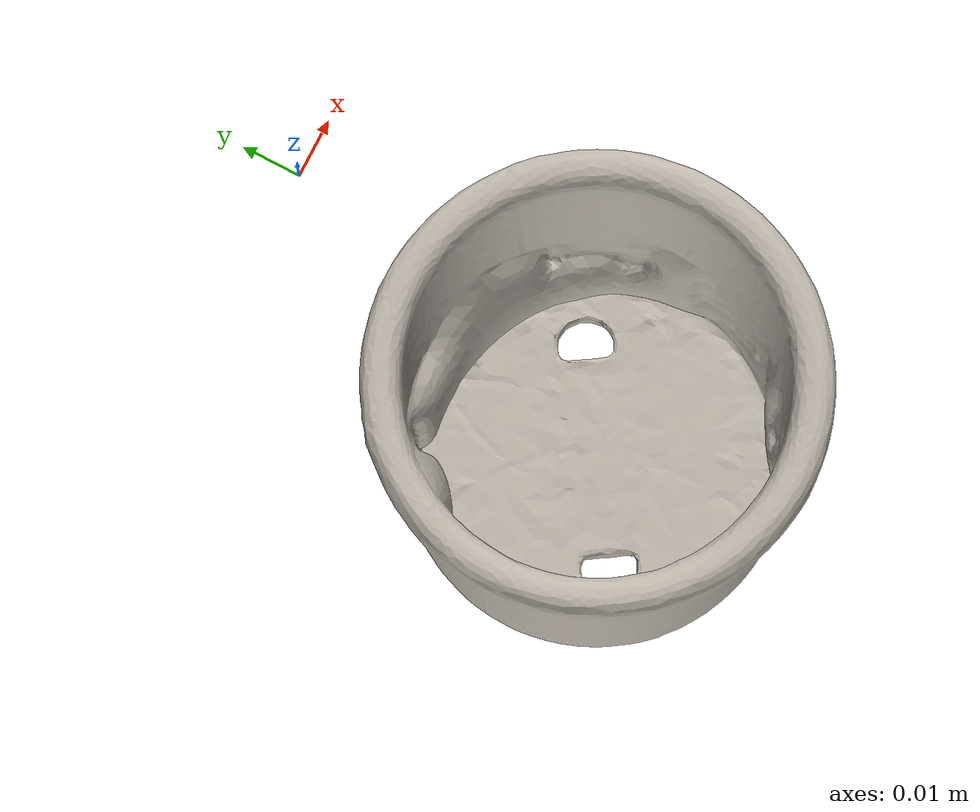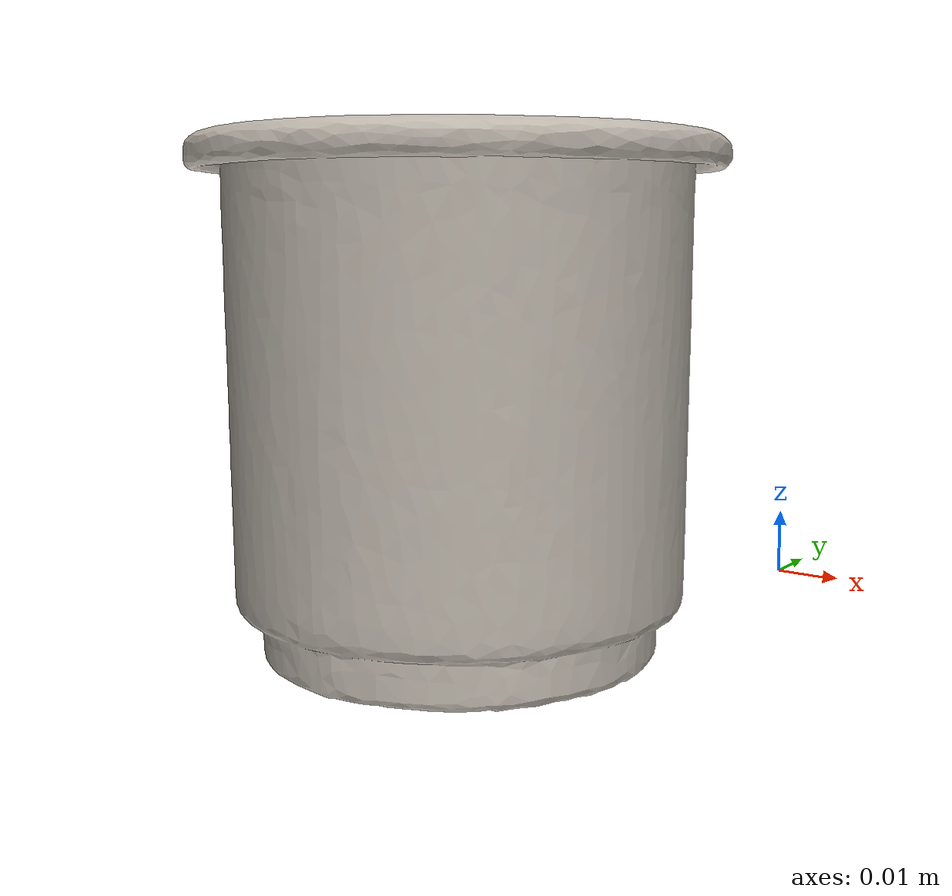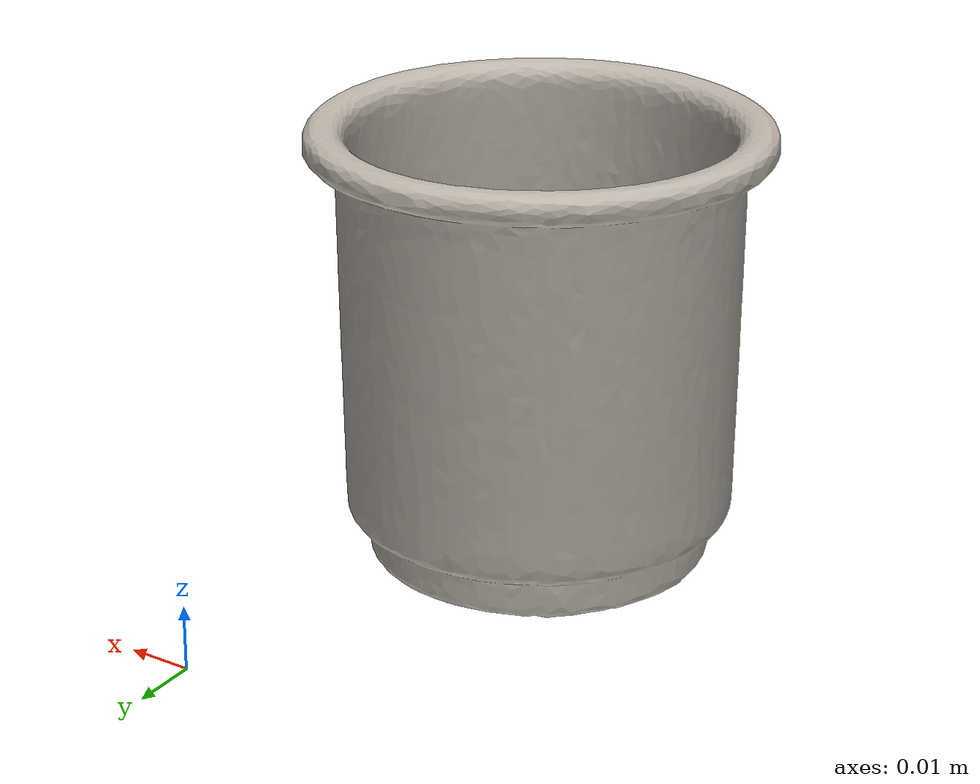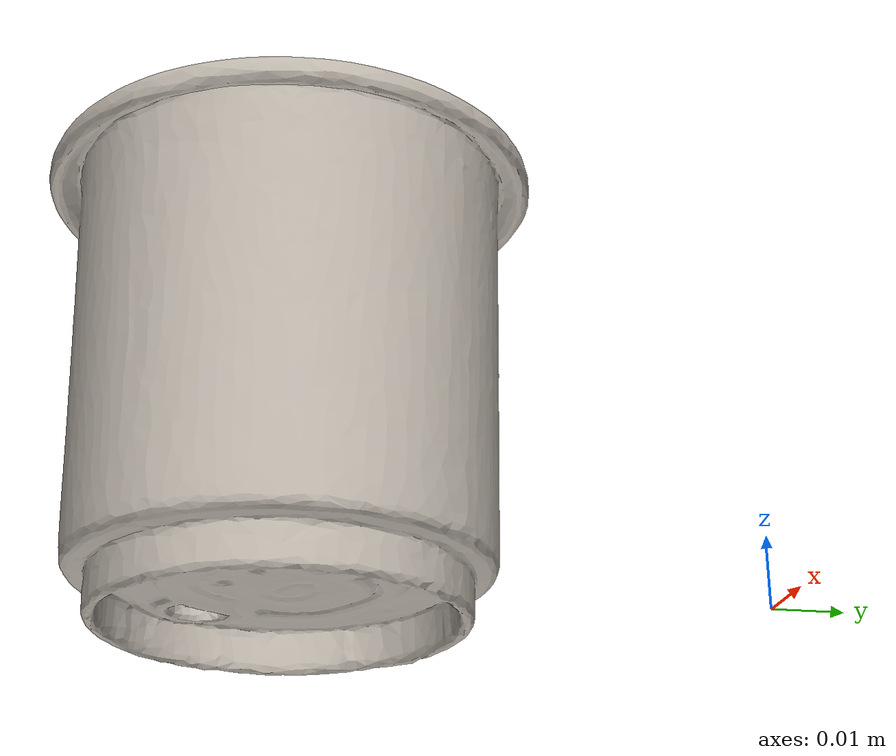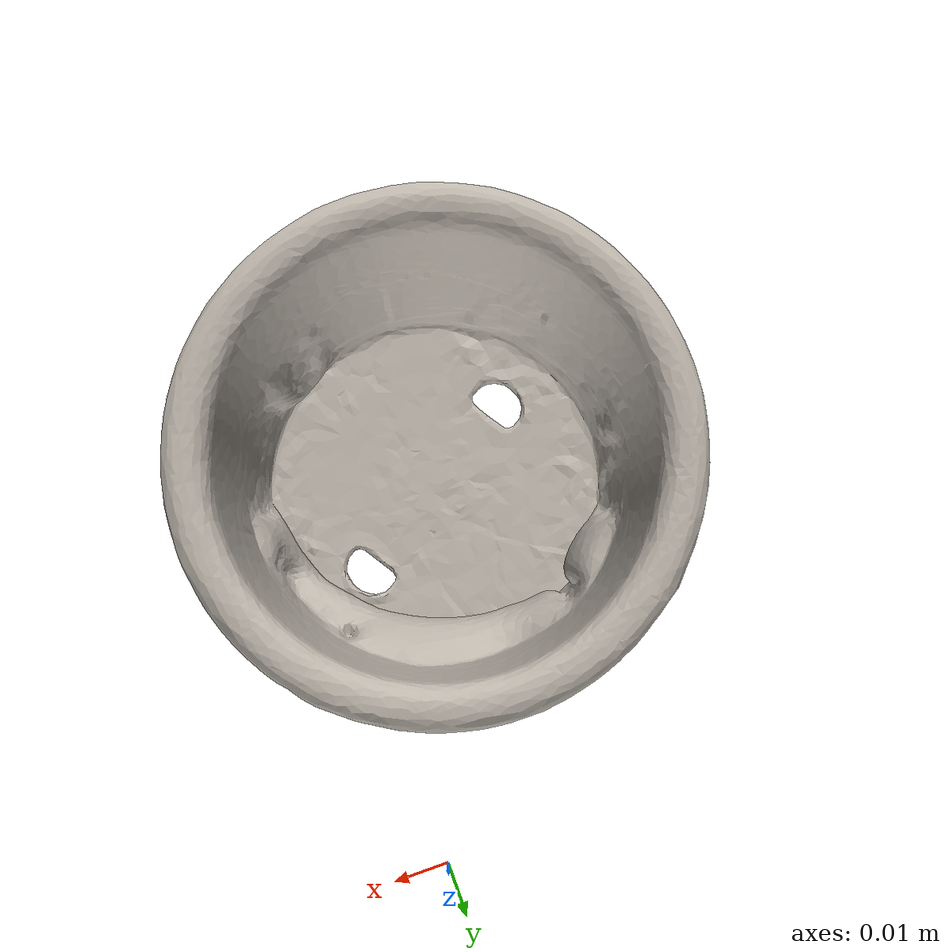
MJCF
<mujoco model="cups_d">
  <compiler angle="radian" meshdir="assets" texturedir="assets"/>
    <default>
        <default class="ycb_col">
            <geom contype="1" conaffinity="1" group="3" rgba=".4 .5 .6 1"/>
        </default>
        <default class="ycb_viz">
            <geom contype="0" conaffinity="0" type="mesh" mass="0"/>
        </default>
    </default>
  <asset>
    <texture type="2d" name="d_cups_tex" file="texture_map.png"/>
    <material name="d_cups_mat" texture="d_cups_tex" specular="0.5" shininess="0.5"/>
    <mesh file="textured.obj" name="d_cups"/>
    <mesh file="textured_collision_0.obj" name="d_cups_collision_0"/>
    <mesh file="textured_collision_1.obj" name="d_cups_collision_1"/>
    <mesh file="textured_collision_2.obj" name="d_cups_collision_2"/>
    <mesh file="textured_collision_3.obj" name="d_cups_collision_3"/>
    <mesh file="textured_collision_4.obj" name="d_cups_collision_4"/>
    <mesh file="textured_collision_5.obj" name="d_cups_collision_5"/>
    <mesh file="textured_collision_6.obj" name="d_cups_collision_6"/>
    <mesh file="textured_collision_7.obj" name="d_cups_collision_7"/>
    <mesh file="textured_collision_8.obj" name="d_cups_collision_8"/>
    <mesh file="textured_collision_9.obj" name="d_cups_collision_9"/>
    <mesh file="textured_collision_10.obj" name="d_cups_collision_10"/>
    <mesh file="textured_collision_11.obj" name="d_cups_collision_11"/>
    <mesh file="textured_collision_12.obj" name="d_cups_collision_12"/>
    <mesh file="textured_collision_13.obj" name="d_cups_collision_13"/>
    <mesh file="textured_collision_14.obj" name="d_cups_collision_14"/>
    <mesh file="textured_collision_15.obj" name="d_cups_collision_15"/>
    <mesh file="textured_collision_16.obj" name="d_cups_collision_16"/>
    <mesh file="textured_collision_17.obj" name="d_cups_collision_17"/>
    <mesh file="textured_collision_18.obj" name="d_cups_collision_18"/>
    <mesh file="textured_collision_19.obj" name="d_cups_collision_19"/>
    <mesh file="textured_collision_20.obj" name="d_cups_collision_20"/>
    <mesh file="textured_collision_21.obj" name="d_cups_collision_21"/>
    <mesh file="textured_collision_22.obj" name="d_cups_collision_22"/>
    <mesh file="textured_collision_23.obj" name="d_cups_collision_23"/>
    <mesh file="textured_collision_24.obj" name="d_cups_collision_24"/>
    <mesh file="textured_collision_25.obj" name="d_cups_collision_25"/>
    <mesh file="textured_collision_26.obj" name="d_cups_collision_26"/>
    <mesh file="textured_collision_27.obj" name="d_cups_collision_27"/>
    <mesh file="textured_collision_28.obj" name="d_cups_collision_28"/>
    <mesh file="textured_collision_29.obj" name="d_cups_collision_29"/>
    <mesh file="textured_collision_30.obj" name="d_cups_collision_30"/>
    <mesh file="textured_collision_31.obj" name="d_cups_collision_31"/>
    <mesh file="textured_collision_32.obj" name="d_cups_collision_32"/>
    <mesh file="textured_collision_33.obj" name="d_cups_collision_33"/>
    <mesh file="textured_collision_34.obj" name="d_cups_collision_34"/>
    <mesh file="textured_collision_35.obj" name="d_cups_collision_35"/>
    <mesh file="textured_collision_36.obj" name="d_cups_collision_36"/>
    <mesh file="textured_collision_37.obj" name="d_cups_collision_37"/>
    <mesh file="textured_collision_38.obj" name="d_cups_collision_38"/>
    <mesh file="textured_collision_39.obj" name="d_cups_collision_39"/>
    <mesh file="textured_collision_40.obj" name="d_cups_collision_40"/>
    <mesh file="textured_collision_41.obj" name="d_cups_collision_41"/>
    <mesh file="textured_collision_42.obj" name="d_cups_collision_42"/>
    <mesh file="textured_collision_43.obj" name="d_cups_collision_43"/>
    <mesh file="textured_collision_44.obj" name="d_cups_collision_44"/>
    <mesh file="textured_collision_45.obj" name="d_cups_collision_45"/>
    <mesh file="textured_collision_46.obj" name="d_cups_collision_46"/>
    <mesh file="textured_collision_47.obj" name="d_cups_collision_47"/>
    <mesh file="textured_collision_48.obj" name="d_cups_collision_48"/>
    <mesh file="textured_collision_49.obj" name="d_cups_collision_49"/>
  </asset>
  <worldbody>
      <geom material="d_cups_mat" mesh="d_cups" class="ycb_viz"/>
      <geom mesh="d_cups_collision_0" class="ycb_col" conaffinity="1" condim="4" friction="0.1 0.1 0.1" mass="0.00031830678748732673" rgba="1 1 1 1" solimp="0.99 0.99 0.01" solref=".001 0.1" type="mesh" group="3"/>
      <geom mesh="d_cups_collision_1" class="ycb_col" conaffinity="1" condim="4" friction="0.1 0.1 0.1" mass="0.00026672591283422535" rgba="1 1 1 1" solimp="0.99 0.99 0.01" solref=".001 0.1" type="mesh" group="3"/>
      <geom mesh="d_cups_collision_2" class="ycb_col" conaffinity="1" condim="4" friction="0.1 0.1 0.1" mass="0.0003665005218733435" rgba="1 1 1 1" solimp="0.99 0.99 0.01" solref=".001 0.1" type="mesh" group="3"/>
      <geom mesh="d_cups_collision_3" class="ycb_col" conaffinity="1" condim="4" friction="0.1 0.1 0.1" mass="0.00023205158303981184" rgba="1 1 1 1" solimp="0.99 0.99 0.01" solref=".001 0.1" type="mesh" group="3"/>
      <geom mesh="d_cups_collision_4" class="ycb_col" conaffinity="1" condim="4" friction="0.1 0.1 0.1" mass="0.0003065902723178764" rgba="1 1 1 1" solimp="0.99 0.99 0.01" solref=".001 0.1" type="mesh" group="3"/>
      <geom mesh="d_cups_collision_5" class="ycb_col" conaffinity="1" condim="4" friction="0.1 0.1 0.1" mass="0.0007450112802066795" rgba="1 1 1 1" solimp="0.99 0.99 0.01" solref=".001 0.1" type="mesh" group="3"/>
      <geom mesh="d_cups_collision_6" class="ycb_col" conaffinity="1" condim="4" friction="0.1 0.1 0.1" mass="0.0006206506531035224" rgba="1 1 1 1" solimp="0.99 0.99 0.01" solref=".001 0.1" type="mesh" group="3"/>
      <geom mesh="d_cups_collision_7" class="ycb_col" conaffinity="1" condim="4" friction="0.1 0.1 0.1" mass="0.0002058184350445779" rgba="1 1 1 1" solimp="0.99 0.99 0.01" solref=".001 0.1" type="mesh" group="3"/>
      <geom mesh="d_cups_collision_8" class="ycb_col" conaffinity="1" condim="4" friction="0.1 0.1 0.1" mass="0.00010468761317020666" rgba="1 1 1 1" solimp="0.99 0.99 0.01" solref=".001 0.1" type="mesh" group="3"/>
      <geom mesh="d_cups_collision_9" class="ycb_col" conaffinity="1" condim="4" friction="0.1 0.1 0.1" mass="0.00021628292112768177" rgba="1 1 1 1" solimp="0.99 0.99 0.01" solref=".001 0.1" type="mesh" group="3"/>
      <geom mesh="d_cups_collision_10" class="ycb_col" conaffinity="1" condim="4" friction="0.1 0.1 0.1" mass="5.98226558562608e-05" rgba="1 1 1 1" solimp="0.99 0.99 0.01" solref=".001 0.1" type="mesh" group="3"/>
      <geom mesh="d_cups_collision_11" class="ycb_col" conaffinity="1" condim="4" friction="0.1 0.1 0.1" mass="0.00018138056066273027" rgba="1 1 1 1" solimp="0.99 0.99 0.01" solref=".001 0.1" type="mesh" group="3"/>
      <geom mesh="d_cups_collision_12" class="ycb_col" conaffinity="1" condim="4" friction="0.1 0.1 0.1" mass="5.963594954919178e-05" rgba="1 1 1 1" solimp="0.99 0.99 0.01" solref=".001 0.1" type="mesh" group="3"/>
      <geom mesh="d_cups_collision_13" class="ycb_col" conaffinity="1" condim="4" friction="0.1 0.1 0.1" mass="0.00013272766210836566" rgba="1 1 1 1" solimp="0.99 0.99 0.01" solref=".001 0.1" type="mesh" group="3"/>
      <geom mesh="d_cups_collision_14" class="ycb_col" conaffinity="1" condim="4" friction="0.1 0.1 0.1" mass="0.00013179174306046534" rgba="1 1 1 1" solimp="0.99 0.99 0.01" solref=".001 0.1" type="mesh" group="3"/>
      <geom mesh="d_cups_collision_15" class="ycb_col" conaffinity="1" condim="4" friction="0.1 0.1 0.1" mass="0.0008779079661201296" rgba="1 1 1 1" solimp="0.99 0.99 0.01" solref=".001 0.1" type="mesh" group="3"/>
      <geom mesh="d_cups_collision_16" class="ycb_col" conaffinity="1" condim="4" friction="0.1 0.1 0.1" mass="0.0005869787033058485" rgba="1 1 1 1" solimp="0.99 0.99 0.01" solref=".001 0.1" type="mesh" group="3"/>
      <geom mesh="d_cups_collision_17" class="ycb_col" conaffinity="1" condim="4" friction="0.1 0.1 0.1" mass="0.0007415388097975012" rgba="1 1 1 1" solimp="0.99 0.99 0.01" solref=".001 0.1" type="mesh" group="3"/>
      <geom mesh="d_cups_collision_18" class="ycb_col" conaffinity="1" condim="4" friction="0.1 0.1 0.1" mass="0.0006739934297861619" rgba="1 1 1 1" solimp="0.99 0.99 0.01" solref=".001 0.1" type="mesh" group="3"/>
      <geom mesh="d_cups_collision_19" class="ycb_col" conaffinity="1" condim="4" friction="0.1 0.1 0.1" mass="0.00010921998601902424" rgba="1 1 1 1" solimp="0.99 0.99 0.01" solref=".001 0.1" type="mesh" group="3"/>
      <geom mesh="d_cups_collision_20" class="ycb_col" conaffinity="1" condim="4" friction="0.1 0.1 0.1" mass="0.00015239358944442157" rgba="1 1 1 1" solimp="0.99 0.99 0.01" solref=".001 0.1" type="mesh" group="3"/>
      <geom mesh="d_cups_collision_21" class="ycb_col" conaffinity="1" condim="4" friction="0.1 0.1 0.1" mass="0.0009708379802209072" rgba="1 1 1 1" solimp="0.99 0.99 0.01" solref=".001 0.1" type="mesh" group="3"/>
      <geom mesh="d_cups_collision_22" class="ycb_col" conaffinity="1" condim="4" friction="0.1 0.1 0.1" mass="0.0009426157033720977" rgba="1 1 1 1" solimp="0.99 0.99 0.01" solref=".001 0.1" type="mesh" group="3"/>
      <geom mesh="d_cups_collision_23" class="ycb_col" conaffinity="1" condim="4" friction="0.1 0.1 0.1" mass="7.786183161228573e-05" rgba="1 1 1 1" solimp="0.99 0.99 0.01" solref=".001 0.1" type="mesh" group="3"/>
      <geom mesh="d_cups_collision_24" class="ycb_col" conaffinity="1" condim="4" friction="0.1 0.1 0.1" mass="0.00011921459315544352" rgba="1 1 1 1" solimp="0.99 0.99 0.01" solref=".001 0.1" type="mesh" group="3"/>
      <geom mesh="d_cups_collision_25" class="ycb_col" conaffinity="1" condim="4" friction="0.1 0.1 0.1" mass="0.0005706925051359062" rgba="1 1 1 1" solimp="0.99 0.99 0.01" solref=".001 0.1" type="mesh" group="3"/>
      <geom mesh="d_cups_collision_26" class="ycb_col" conaffinity="1" condim="4" friction="0.1 0.1 0.1" mass="0.001006779516775264" rgba="1 1 1 1" solimp="0.99 0.99 0.01" solref=".001 0.1" type="mesh" group="3"/>
      <geom mesh="d_cups_collision_27" class="ycb_col" conaffinity="1" condim="4" friction="0.1 0.1 0.1" mass="0.0006131134524825888" rgba="1 1 1 1" solimp="0.99 0.99 0.01" solref=".001 0.1" type="mesh" group="3"/>
      <geom mesh="d_cups_collision_28" class="ycb_col" conaffinity="1" condim="4" friction="0.1 0.1 0.1" mass="9.555804155739055e-05" rgba="1 1 1 1" solimp="0.99 0.99 0.01" solref=".001 0.1" type="mesh" group="3"/>
      <geom mesh="d_cups_collision_29" class="ycb_col" conaffinity="1" condim="4" friction="0.1 0.1 0.1" mass="0.0001276101386023565" rgba="1 1 1 1" solimp="0.99 0.99 0.01" solref=".001 0.1" type="mesh" group="3"/>
      <geom mesh="d_cups_collision_30" class="ycb_col" conaffinity="1" condim="4" friction="0.1 0.1 0.1" mass="0.0001869147494079329" rgba="1 1 1 1" solimp="0.99 0.99 0.01" solref=".001 0.1" type="mesh" group="3"/>
      <geom mesh="d_cups_collision_31" class="ycb_col" conaffinity="1" condim="4" friction="0.1 0.1 0.1" mass="0.0016142283157540656" rgba="1 1 1 1" solimp="0.99 0.99 0.01" solref=".001 0.1" type="mesh" group="3"/>
      <geom mesh="d_cups_collision_32" class="ycb_col" conaffinity="1" condim="4" friction="0.1 0.1 0.1" mass="0.00024078749832801604" rgba="1 1 1 1" solimp="0.99 0.99 0.01" solref=".001 0.1" type="mesh" group="3"/>
      <geom mesh="d_cups_collision_33" class="ycb_col" conaffinity="1" condim="4" friction="0.1 0.1 0.1" mass="0.00012187120937111086" rgba="1 1 1 1" solimp="0.99 0.99 0.01" solref=".001 0.1" type="mesh" group="3"/>
      <geom mesh="d_cups_collision_34" class="ycb_col" conaffinity="1" condim="4" friction="0.1 0.1 0.1" mass="0.0004117931794231115" rgba="1 1 1 1" solimp="0.99 0.99 0.01" solref=".001 0.1" type="mesh" group="3"/>
      <geom mesh="d_cups_collision_35" class="ycb_col" conaffinity="1" condim="4" friction="0.1 0.1 0.1" mass="0.0001971306140863668" rgba="1 1 1 1" solimp="0.99 0.99 0.01" solref=".001 0.1" type="mesh" group="3"/>
      <geom mesh="d_cups_collision_36" class="ycb_col" conaffinity="1" condim="4" friction="0.1 0.1 0.1" mass="0.0007356473092394504" rgba="1 1 1 1" solimp="0.99 0.99 0.01" solref=".001 0.1" type="mesh" group="3"/>
      <geom mesh="d_cups_collision_37" class="ycb_col" conaffinity="1" condim="4" friction="0.1 0.1 0.1" mass="0.000437419572841975" rgba="1 1 1 1" solimp="0.99 0.99 0.01" solref=".001 0.1" type="mesh" group="3"/>
      <geom mesh="d_cups_collision_38" class="ycb_col" conaffinity="1" condim="4" friction="0.1 0.1 0.1" mass="0.00014208730524783262" rgba="1 1 1 1" solimp="0.99 0.99 0.01" solref=".001 0.1" type="mesh" group="3"/>
      <geom mesh="d_cups_collision_39" class="ycb_col" conaffinity="1" condim="4" friction="0.1 0.1 0.1" mass="0.00031180691986224614" rgba="1 1 1 1" solimp="0.99 0.99 0.01" solref=".001 0.1" type="mesh" group="3"/>
      <geom mesh="d_cups_collision_40" class="ycb_col" conaffinity="1" condim="4" friction="0.1 0.1 0.1" mass="0.0007896386253240772" rgba="1 1 1 1" solimp="0.99 0.99 0.01" solref=".001 0.1" type="mesh" group="3"/>
      <geom mesh="d_cups_collision_41" class="ycb_col" conaffinity="1" condim="4" friction="0.1 0.1 0.1" mass="0.00017677833285330502" rgba="1 1 1 1" solimp="0.99 0.99 0.01" solref=".001 0.1" type="mesh" group="3"/>
      <geom mesh="d_cups_collision_42" class="ycb_col" conaffinity="1" condim="4" friction="0.1 0.1 0.1" mass="0.00028396473657546717" rgba="1 1 1 1" solimp="0.99 0.99 0.01" solref=".001 0.1" type="mesh" group="3"/>
      <geom mesh="d_cups_collision_43" class="ycb_col" conaffinity="1" condim="4" friction="0.1 0.1 0.1" mass="0.00018257525776638311" rgba="1 1 1 1" solimp="0.99 0.99 0.01" solref=".001 0.1" type="mesh" group="3"/>
      <geom mesh="d_cups_collision_44" class="ycb_col" conaffinity="1" condim="4" friction="0.1 0.1 0.1" mass="2.9121926706366732e-05" rgba="1 1 1 1" solimp="0.99 0.99 0.01" solref=".001 0.1" type="mesh" group="3"/>
      <geom mesh="d_cups_collision_45" class="ycb_col" conaffinity="1" condim="4" friction="0.1 0.1 0.1" mass="0.0004859065409423448" rgba="1 1 1 1" solimp="0.99 0.99 0.01" solref=".001 0.1" type="mesh" group="3"/>
      <geom mesh="d_cups_collision_46" class="ycb_col" conaffinity="1" condim="4" friction="0.1 0.1 0.1" mass="0.00022506785892885476" rgba="1 1 1 1" solimp="0.99 0.99 0.01" solref=".001 0.1" type="mesh" group="3"/>
      <geom mesh="d_cups_collision_47" class="ycb_col" conaffinity="1" condim="4" friction="0.1 0.1 0.1" mass="0.0002045636439293302" rgba="1 1 1 1" solimp="0.99 0.99 0.01" solref=".001 0.1" type="mesh" group="3"/>
      <geom mesh="d_cups_collision_48" class="ycb_col" conaffinity="1" condim="4" friction="0.1 0.1 0.1" mass="0.0003604854819195624" rgba="1 1 1 1" solimp="0.99 0.99 0.01" solref=".001 0.1" type="mesh" group="3"/>
      <geom mesh="d_cups_collision_49" class="ycb_col" conaffinity="1" condim="4" friction="0.1 0.1 0.1" mass="0.0002479101226626052" rgba="1 1 1 1" solimp="0.99 0.99 0.01" solref=".001 0.1" type="mesh" group="3"/>
  </worldbody>
</mujoco>
